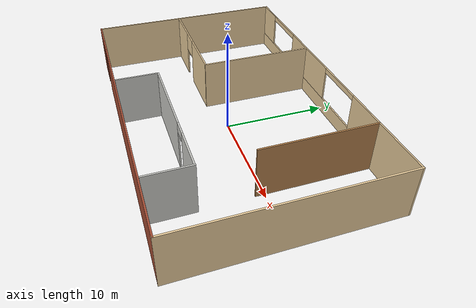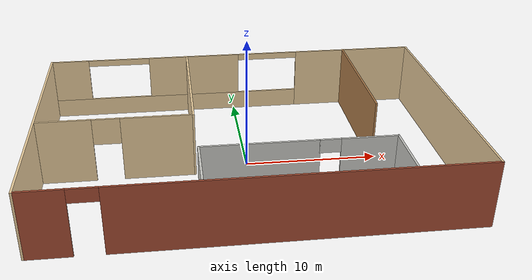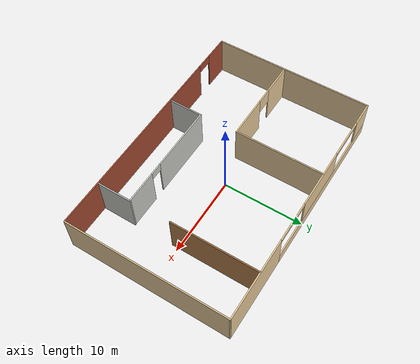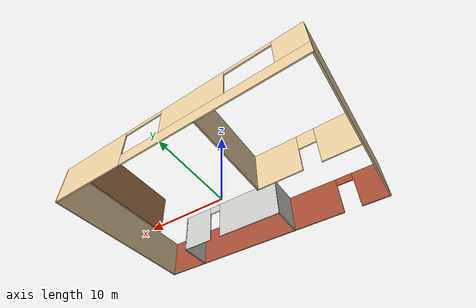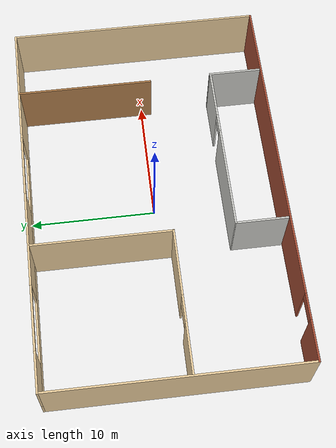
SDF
<?xml version='1.0'?>
<sdf version='1.6'>
  <model name='house_robot'>
    <link name='Wall_103'>
      <pose frame=''>-3.96202 4.4525 0 0 -0 1.5708</pose>
      <self_collide>0</self_collide>
      <kinematic>0</kinematic>
      <visual name='Wall_103_Visual'>
        <pose frame=''>0 0 2.5 0 -0 0</pose>
        <geometry>
          <box>
            <size>11 0.15 5</size>
          </box>
        </geometry>
        <material>
          <script>
            <uri>file://media/materials/scripts/gazebo.material</uri>
            <name>Gazebo/Grey</name>
          </script>
          <ambient>0.921569 0.807843 0.615686 1</ambient>
          <diffuse>0.7 0.7 0.7 1</diffuse>
          <specular>0.01 0.01 0.01 1</specular>
          <emissive>0 0 0 1</emissive>
        </material>
        <cast_shadows>1</cast_shadows>
        <transparency>0</transparency>
      </visual>
      <collision name='Wall_103_Collision'>
        <laser_retro>0</laser_retro>
        <max_contacts>10</max_contacts>
        <pose frame=''>0 0 2.5 0 -0 0</pose>
        <geometry>
          <box>
            <size>11 0.15 5</size>
          </box>
        </geometry>
        <surface>
          <friction>
            <ode>
              <mu>1</mu>
              <mu2>1</mu2>
              <fdir1>0 0 0</fdir1>
              <slip1>0</slip1>
              <slip2>0</slip2>
            </ode>
            <torsional>
              <coefficient>1</coefficient>
              <patch_radius>0</patch_radius>
              <surface_radius>0</surface_radius>
              <use_patch_radius>1</use_patch_radius>
              <ode>
                <slip>0</slip>
              </ode>
            </torsional>
          </friction>
          <bounce>
            <restitution_coefficient>0</restitution_coefficient>
            <threshold>1e+06</threshold>
          </bounce>
          <contact>
            <collide_without_contact>0</collide_without_contact>
            <collide_without_contact_bitmask>1</collide_without_contact_bitmask>
            <collide_bitmask>1</collide_bitmask>
            <ode>
              <soft_cfm>0</soft_cfm>
              <soft_erp>0.2</soft_erp>
              <kp>1e+13</kp>
              <kd>1</kd>
              <max_vel>0.01</max_vel>
              <min_depth>0</min_depth>
            </ode>
            <bullet>
              <split_impulse>1</split_impulse>
              <split_impulse_penetration_threshold>-0.01</split_impulse_penetration_threshold>
              <soft_cfm>0</soft_cfm>
              <soft_erp>0.2</soft_erp>
              <kp>1e+13</kp>
              <kd>1</kd>
            </bullet>
          </contact>
        </surface>
      </collision>
    </link>
    <link name='Wall_105'>
      <pose frame=''>9.54899 4.5795 0 0 0 -1.5708</pose>
      <self_collide>0</self_collide>
      <kinematic>0</kinematic>
      <visual name='Wall_105_Visual'>
        <pose frame=''>0 0 2.5 0 -0 0</pose>
        <geometry>
          <box>
            <size>10.75 0.15 5</size>
          </box>
        </geometry>
        <material>
          <script>
            <uri>file://media/materials/scripts/gazebo.material</uri>
            <name>Gazebo/Wood</name>
          </script>
          <ambient>0.921569 0.807843 0.615686 1</ambient>
          <diffuse>1 1 1 1</diffuse>
          <specular>0.2 0.2 0.2 1</specular>
          <emissive>0 0 0 1</emissive>
        </material>
        <cast_shadows>1</cast_shadows>
        <transparency>0</transparency>
      </visual>
      <collision name='Wall_105_Collision'>
        <laser_retro>0</laser_retro>
        <max_contacts>10</max_contacts>
        <pose frame=''>0 0 2.5 0 -0 0</pose>
        <geometry>
          <box>
            <size>10.75 0.15 5</size>
          </box>
        </geometry>
        <surface>
          <friction>
            <ode>
              <mu>1</mu>
              <mu2>1</mu2>
              <fdir1>0 0 0</fdir1>
              <slip1>0</slip1>
              <slip2>0</slip2>
            </ode>
            <torsional>
              <coefficient>1</coefficient>
              <patch_radius>0</patch_radius>
              <surface_radius>0</surface_radius>
              <use_patch_radius>1</use_patch_radius>
              <ode>
                <slip>0</slip>
              </ode>
            </torsional>
          </friction>
          <bounce>
            <restitution_coefficient>0</restitution_coefficient>
            <threshold>1e+06</threshold>
          </bounce>
          <contact>
            <collide_without_contact>0</collide_without_contact>
            <collide_without_contact_bitmask>1</collide_without_contact_bitmask>
            <collide_bitmask>1</collide_bitmask>
            <ode>
              <soft_cfm>0</soft_cfm>
              <soft_erp>0.2</soft_erp>
              <kp>1e+13</kp>
              <kd>1</kd>
              <max_vel>0.01</max_vel>
              <min_depth>0</min_depth>
            </ode>
            <bullet>
              <split_impulse>1</split_impulse>
              <split_impulse_penetration_threshold>-0.01</split_impulse_penetration_threshold>
              <soft_cfm>0</soft_cfm>
              <soft_erp>0.2</soft_erp>
              <kp>1e+13</kp>
              <kd>1</kd>
            </bullet>
          </contact>
        </surface>
      </collision>
    </link>
    <link name='Wall_107'>
      <pose frame=''>15.175 0.0265 0 0 -0 1.5708</pose>
      <self_collide>0</self_collide>
      <kinematic>0</kinematic>
      <visual name='Wall_107_Visual'>
        <pose frame=''>0 0 2.5 0 -0 0</pose>
        <geometry>
          <box>
            <size>20 0.15 5</size>
          </box>
        </geometry>
        <material>
          <script>
            <uri>file://media/materials/scripts/gazebo.material</uri>
            <name>Gazebo/Grey</name>
          </script>
          <ambient>0.921569 0.807843 0.615686 1</ambient>
          <diffuse>0.7 0.7 0.7 1</diffuse>
          <specular>0.01 0.01 0.01 1</specular>
          <emissive>0 0 0 1</emissive>
        </material>
        <cast_shadows>1</cast_shadows>
        <transparency>0</transparency>
      </visual>
      <collision name='Wall_107_Collision'>
        <laser_retro>0</laser_retro>
        <max_contacts>10</max_contacts>
        <pose frame=''>0 0 2.5 0 -0 0</pose>
        <geometry>
          <box>
            <size>20 0.15 5</size>
          </box>
        </geometry>
        <surface>
          <friction>
            <ode>
              <mu>1</mu>
              <mu2>1</mu2>
              <fdir1>0 0 0</fdir1>
              <slip1>0</slip1>
              <slip2>0</slip2>
            </ode>
            <torsional>
              <coefficient>1</coefficient>
              <patch_radius>0</patch_radius>
              <surface_radius>0</surface_radius>
              <use_patch_radius>1</use_patch_radius>
              <ode>
                <slip>0</slip>
              </ode>
            </torsional>
          </friction>
          <bounce>
            <restitution_coefficient>0</restitution_coefficient>
            <threshold>1e+06</threshold>
          </bounce>
          <contact>
            <collide_without_contact>0</collide_without_contact>
            <collide_without_contact_bitmask>1</collide_without_contact_bitmask>
            <collide_bitmask>1</collide_bitmask>
            <ode>
              <soft_cfm>0</soft_cfm>
              <soft_erp>0.2</soft_erp>
              <kp>1e+13</kp>
              <kd>1</kd>
              <max_vel>0.01</max_vel>
              <min_depth>0</min_depth>
            </ode>
            <bullet>
              <split_impulse>1</split_impulse>
              <split_impulse_penetration_threshold>-0.01</split_impulse_penetration_threshold>
              <soft_cfm>0</soft_cfm>
              <soft_erp>0.2</soft_erp>
              <kp>1e+13</kp>
              <kd>1</kd>
            </bullet>
          </contact>
        </surface>
      </collision>
    </link>
    <link name='Wall_108'>
      <pose frame=''>-1.5e-05 9.9515 0 0 -0 3.14159</pose>
      <self_collide>0</self_collide>
      <kinematic>0</kinematic>
      <visual name='Wall_108_Visual_1'>
        <pose frame=''>4.92284 0 0.75 0 -0 0</pose>
        <geometry>
          <box>
            <size>20.6543 0.15 1.5</size>
          </box>
        </geometry>
        <material>
          <script>
            <uri>file://media/materials/scripts/gazebo.material</uri>
            <name>Gazebo/Grey</name>
          </script>
          <ambient>0.921569 0.807843 0.615686 1</ambient>
          <diffuse>0.7 0.7 0.7 1</diffuse>
          <specular>0.01 0.01 0.01 1</specular>
          <emissive>0 0 0 1</emissive>
        </material>
        <cast_shadows>1</cast_shadows>
        <transparency>0</transparency>
      </visual>
      <visual name='Wall_108_Visual_4'>
        <pose frame=''>-2.90432 0 4.75 0 -0 0</pose>
        <geometry>
          <box>
            <size>5 0.15 0.5</size>
          </box>
        </geometry>
        <material>
          <script>
            <uri>file://media/materials/scripts/gazebo.material</uri>
            <name>Gazebo/Grey</name>
          </script>
          <ambient>0.921569 0.807843 0.615686 1</ambient>
          <diffuse>0.7 0.7 0.7 1</diffuse>
          <specular>0.01 0.01 0.01 1</specular>
          <emissive>0 0 0 1</emissive>
        </material>
        <cast_shadows>1</cast_shadows>
        <transparency>0</transparency>
      </visual>
      <visual name='Wall_108_Visual_5'>
        <pose frame=''>9.64746 0 4.75 0 -0 0</pose>
        <geometry>
          <box>
            <size>5 0.15 0.5</size>
          </box>
        </geometry>
        <material>
          <script>
            <uri>file://media/materials/scripts/gazebo.material</uri>
            <name>Gazebo/Grey</name>
          </script>
          <ambient>0.921569 0.807843 0.615686 1</ambient>
          <diffuse>0.7 0.7 0.7 1</diffuse>
          <specular>0.01 0.01 0.01 1</specular>
          <emissive>0 0 0 1</emissive>
        </material>
        <cast_shadows>1</cast_shadows>
        <transparency>0</transparency>
      </visual>
      <visual name='Wall_108_Visual_2'>
        <pose frame=''>3.37157 0 3.25 0 -0 0</pose>
        <geometry>
          <box>
            <size>7.55178 0.15 3.5</size>
          </box>
        </geometry>
        <material>
          <script>
            <uri>file://media/materials/scripts/gazebo.material</uri>
            <name>Gazebo/Grey</name>
          </script>
          <ambient>0.921569 0.807843 0.615686 1</ambient>
          <diffuse>0.7 0.7 0.7 1</diffuse>
          <specular>0.01 0.01 0.01 1</specular>
          <emissive>0 0 0 1</emissive>
        </material>
        <cast_shadows>1</cast_shadows>
        <transparency>0</transparency>
      </visual>
      <visual name='Wall_108_Visual_0'>
        <pose frame=''>-10.3272 0 2.5 0 -0 0</pose>
        <geometry>
          <box>
            <size>9.84568 0.15 5</size>
          </box>
        </geometry>
        <material>
          <script>
            <uri>file://media/materials/scripts/gazebo.material</uri>
            <name>Gazebo/Grey</name>
          </script>
          <ambient>0.921569 0.807843 0.615686 1</ambient>
          <diffuse>0.7 0.7 0.7 1</diffuse>
          <specular>0.01 0.01 0.01 1</specular>
          <emissive>0 0 0 1</emissive>
        </material>
        <cast_shadows>1</cast_shadows>
        <transparency>0</transparency>
      </visual>
      <visual name='Wall_108_Visual_3'>
        <pose frame=''>13.6987 0 3.25 0 -0 0</pose>
        <geometry>
          <box>
            <size>3.10254 0.15 3.5</size>
          </box>
        </geometry>
        <material>
          <script>
            <uri>file://media/materials/scripts/gazebo.material</uri>
            <name>Gazebo/Grey</name>
          </script>
          <ambient>0.921569 0.807843 0.615686 1</ambient>
          <diffuse>0.7 0.7 0.7 1</diffuse>
          <specular>0.01 0.01 0.01 1</specular>
          <emissive>0 0 0 1</emissive>
        </material>
        <cast_shadows>1</cast_shadows>
        <transparency>0</transparency>
      </visual>
      <collision name='Wall_108_Collision_0'>
        <laser_retro>0</laser_retro>
        <max_contacts>10</max_contacts>
        <pose frame=''>-10.3272 0 2.5 0 -0 0</pose>
        <geometry>
          <box>
            <size>9.84568 0.15 5</size>
          </box>
        </geometry>
        <surface>
          <friction>
            <ode>
              <mu>1</mu>
              <mu2>1</mu2>
              <fdir1>0 0 0</fdir1>
              <slip1>0</slip1>
              <slip2>0</slip2>
            </ode>
            <torsional>
              <coefficient>1</coefficient>
              <patch_radius>0</patch_radius>
              <surface_radius>0</surface_radius>
              <use_patch_radius>1</use_patch_radius>
              <ode>
                <slip>0</slip>
              </ode>
            </torsional>
          </friction>
          <bounce>
            <restitution_coefficient>0</restitution_coefficient>
            <threshold>1e+06</threshold>
          </bounce>
          <contact>
            <collide_without_contact>0</collide_without_contact>
            <collide_without_contact_bitmask>1</collide_without_contact_bitmask>
            <collide_bitmask>1</collide_bitmask>
            <ode>
              <soft_cfm>0</soft_cfm>
              <soft_erp>0.2</soft_erp>
              <kp>1e+13</kp>
              <kd>1</kd>
              <max_vel>0.01</max_vel>
              <min_depth>0</min_depth>
            </ode>
            <bullet>
              <split_impulse>1</split_impulse>
              <split_impulse_penetration_threshold>-0.01</split_impulse_penetration_threshold>
              <soft_cfm>0</soft_cfm>
              <soft_erp>0.2</soft_erp>
              <kp>1e+13</kp>
              <kd>1</kd>
            </bullet>
          </contact>
        </surface>
      </collision>
      <collision name='Wall_108_Collision_1'>
        <laser_retro>0</laser_retro>
        <max_contacts>10</max_contacts>
        <pose frame=''>4.92284 0 0.75 0 -0 0</pose>
        <geometry>
          <box>
            <size>20.6543 0.15 1.5</size>
          </box>
        </geometry>
        <surface>
          <friction>
            <ode>
              <mu>1</mu>
              <mu2>1</mu2>
              <fdir1>0 0 0</fdir1>
              <slip1>0</slip1>
              <slip2>0</slip2>
            </ode>
            <torsional>
              <coefficient>1</coefficient>
              <patch_radius>0</patch_radius>
              <surface_radius>0</surface_radius>
              <use_patch_radius>1</use_patch_radius>
              <ode>
                <slip>0</slip>
              </ode>
            </torsional>
          </friction>
          <bounce>
            <restitution_coefficient>0</restitution_coefficient>
            <threshold>1e+06</threshold>
          </bounce>
          <contact>
            <collide_without_contact>0</collide_without_contact>
            <collide_without_contact_bitmask>1</collide_without_contact_bitmask>
            <collide_bitmask>1</collide_bitmask>
            <ode>
              <soft_cfm>0</soft_cfm>
              <soft_erp>0.2</soft_erp>
              <kp>1e+13</kp>
              <kd>1</kd>
              <max_vel>0.01</max_vel>
              <min_depth>0</min_depth>
            </ode>
            <bullet>
              <split_impulse>1</split_impulse>
              <split_impulse_penetration_threshold>-0.01</split_impulse_penetration_threshold>
              <soft_cfm>0</soft_cfm>
              <soft_erp>0.2</soft_erp>
              <kp>1e+13</kp>
              <kd>1</kd>
            </bullet>
          </contact>
        </surface>
      </collision>
      <collision name='Wall_108_Collision_4'>
        <laser_retro>0</laser_retro>
        <max_contacts>10</max_contacts>
        <pose frame=''>-2.90432 0 4.75 0 -0 0</pose>
        <geometry>
          <box>
            <size>5 0.15 0.5</size>
          </box>
        </geometry>
        <surface>
          <friction>
            <ode>
              <mu>1</mu>
              <mu2>1</mu2>
              <fdir1>0 0 0</fdir1>
              <slip1>0</slip1>
              <slip2>0</slip2>
            </ode>
            <torsional>
              <coefficient>1</coefficient>
              <patch_radius>0</patch_radius>
              <surface_radius>0</surface_radius>
              <use_patch_radius>1</use_patch_radius>
              <ode>
                <slip>0</slip>
              </ode>
            </torsional>
          </friction>
          <bounce>
            <restitution_coefficient>0</restitution_coefficient>
            <threshold>1e+06</threshold>
          </bounce>
          <contact>
            <collide_without_contact>0</collide_without_contact>
            <collide_without_contact_bitmask>1</collide_without_contact_bitmask>
            <collide_bitmask>1</collide_bitmask>
            <ode>
              <soft_cfm>0</soft_cfm>
              <soft_erp>0.2</soft_erp>
              <kp>1e+13</kp>
              <kd>1</kd>
              <max_vel>0.01</max_vel>
              <min_depth>0</min_depth>
            </ode>
            <bullet>
              <split_impulse>1</split_impulse>
              <split_impulse_penetration_threshold>-0.01</split_impulse_penetration_threshold>
              <soft_cfm>0</soft_cfm>
              <soft_erp>0.2</soft_erp>
              <kp>1e+13</kp>
              <kd>1</kd>
            </bullet>
          </contact>
        </surface>
      </collision>
      <collision name='Wall_108_Collision_2'>
        <laser_retro>0</laser_retro>
        <max_contacts>10</max_contacts>
        <pose frame=''>3.37157 0 3.25 0 -0 0</pose>
        <geometry>
          <box>
            <size>7.55178 0.15 3.5</size>
          </box>
        </geometry>
        <surface>
          <friction>
            <ode>
              <mu>1</mu>
              <mu2>1</mu2>
              <fdir1>0 0 0</fdir1>
              <slip1>0</slip1>
              <slip2>0</slip2>
            </ode>
            <torsional>
              <coefficient>1</coefficient>
              <patch_radius>0</patch_radius>
              <surface_radius>0</surface_radius>
              <use_patch_radius>1</use_patch_radius>
              <ode>
                <slip>0</slip>
              </ode>
            </torsional>
          </friction>
          <bounce>
            <restitution_coefficient>0</restitution_coefficient>
            <threshold>1e+06</threshold>
          </bounce>
          <contact>
            <collide_without_contact>0</collide_without_contact>
            <collide_without_contact_bitmask>1</collide_without_contact_bitmask>
            <collide_bitmask>1</collide_bitmask>
            <ode>
              <soft_cfm>0</soft_cfm>
              <soft_erp>0.2</soft_erp>
              <kp>1e+13</kp>
              <kd>1</kd>
              <max_vel>0.01</max_vel>
              <min_depth>0</min_depth>
            </ode>
            <bullet>
              <split_impulse>1</split_impulse>
              <split_impulse_penetration_threshold>-0.01</split_impulse_penetration_threshold>
              <soft_cfm>0</soft_cfm>
              <soft_erp>0.2</soft_erp>
              <kp>1e+13</kp>
              <kd>1</kd>
            </bullet>
          </contact>
        </surface>
      </collision>
      <collision name='Wall_108_Collision_3'>
        <laser_retro>0</laser_retro>
        <max_contacts>10</max_contacts>
        <pose frame=''>13.6987 0 3.25 0 -0 0</pose>
        <geometry>
          <box>
            <size>3.10254 0.15 3.5</size>
          </box>
        </geometry>
        <surface>
          <friction>
            <ode>
              <mu>1</mu>
              <mu2>1</mu2>
              <fdir1>0 0 0</fdir1>
              <slip1>0</slip1>
              <slip2>0</slip2>
            </ode>
            <torsional>
              <coefficient>1</coefficient>
              <patch_radius>0</patch_radius>
              <surface_radius>0</surface_radius>
              <use_patch_radius>1</use_patch_radius>
              <ode>
                <slip>0</slip>
              </ode>
            </torsional>
          </friction>
          <bounce>
            <restitution_coefficient>0</restitution_coefficient>
            <threshold>1e+06</threshold>
          </bounce>
          <contact>
            <collide_without_contact>0</collide_without_contact>
            <collide_without_contact_bitmask>1</collide_without_contact_bitmask>
            <collide_bitmask>1</collide_bitmask>
            <ode>
              <soft_cfm>0</soft_cfm>
              <soft_erp>0.2</soft_erp>
              <kp>1e+13</kp>
              <kd>1</kd>
              <max_vel>0.01</max_vel>
              <min_depth>0</min_depth>
            </ode>
            <bullet>
              <split_impulse>1</split_impulse>
              <split_impulse_penetration_threshold>-0.01</split_impulse_penetration_threshold>
              <soft_cfm>0</soft_cfm>
              <soft_erp>0.2</soft_erp>
              <kp>1e+13</kp>
              <kd>1</kd>
            </bullet>
          </contact>
        </surface>
      </collision>
      <collision name='Wall_108_Collision_5'>
        <laser_retro>0</laser_retro>
        <max_contacts>10</max_contacts>
        <pose frame=''>9.64746 0 4.75 0 -0 0</pose>
        <geometry>
          <box>
            <size>5 0.15 0.5</size>
          </box>
        </geometry>
        <surface>
          <friction>
            <ode>
              <mu>1</mu>
              <mu2>1</mu2>
              <fdir1>0 0 0</fdir1>
              <slip1>0</slip1>
              <slip2>0</slip2>
            </ode>
            <torsional>
              <coefficient>1</coefficient>
              <patch_radius>0</patch_radius>
              <surface_radius>0</surface_radius>
              <use_patch_radius>1</use_patch_radius>
              <ode>
                <slip>0</slip>
              </ode>
            </torsional>
          </friction>
          <bounce>
            <restitution_coefficient>0</restitution_coefficient>
            <threshold>1e+06</threshold>
          </bounce>
          <contact>
            <collide_without_contact>0</collide_without_contact>
            <collide_without_contact_bitmask>1</collide_without_contact_bitmask>
            <collide_bitmask>1</collide_bitmask>
            <ode>
              <soft_cfm>0</soft_cfm>
              <soft_erp>0.2</soft_erp>
              <kp>1e+13</kp>
              <kd>1</kd>
              <max_vel>0.01</max_vel>
              <min_depth>0</min_depth>
            </ode>
            <bullet>
              <split_impulse>1</split_impulse>
              <split_impulse_penetration_threshold>-0.01</split_impulse_penetration_threshold>
              <soft_cfm>0</soft_cfm>
              <soft_erp>0.2</soft_erp>
              <kp>1e+13</kp>
              <kd>1</kd>
            </bullet>
          </contact>
        </surface>
      </collision>
    </link>
    <link name='Wall_109'>
      <pose frame=''>-15.175 0.0265 0 0 0 -1.5708</pose>
      <self_collide>0</self_collide>
      <kinematic>0</kinematic>
      <visual name='Wall_109_Visual'>
        <pose frame=''>0 0 2.5 0 -0 0</pose>
        <geometry>
          <box>
            <size>20 0.15 5</size>
          </box>
        </geometry>
        <material>
          <script>
            <uri>file://media/materials/scripts/gazebo.material</uri>
            <name>Gazebo/Grey</name>
          </script>
          <ambient>0.921569 0.807843 0.615686 1</ambient>
          <diffuse>0.7 0.7 0.7 1</diffuse>
          <specular>0.01 0.01 0.01 1</specular>
          <emissive>0 0 0 1</emissive>
        </material>
        <cast_shadows>1</cast_shadows>
        <transparency>0</transparency>
      </visual>
      <collision name='Wall_109_Collision'>
        <laser_retro>0</laser_retro>
        <max_contacts>10</max_contacts>
        <pose frame=''>0 0 2.5 0 -0 0</pose>
        <geometry>
          <box>
            <size>20 0.15 5</size>
          </box>
        </geometry>
        <surface>
          <friction>
            <ode>
              <mu>1</mu>
              <mu2>1</mu2>
              <fdir1>0 0 0</fdir1>
              <slip1>0</slip1>
              <slip2>0</slip2>
            </ode>
            <torsional>
              <coefficient>1</coefficient>
              <patch_radius>0</patch_radius>
              <surface_radius>0</surface_radius>
              <use_patch_radius>1</use_patch_radius>
              <ode>
                <slip>0</slip>
              </ode>
            </torsional>
          </friction>
          <bounce>
            <restitution_coefficient>0</restitution_coefficient>
            <threshold>1e+06</threshold>
          </bounce>
          <contact>
            <collide_without_contact>0</collide_without_contact>
            <collide_without_contact_bitmask>1</collide_without_contact_bitmask>
            <collide_bitmask>1</collide_bitmask>
            <ode>
              <soft_cfm>0</soft_cfm>
              <soft_erp>0.2</soft_erp>
              <kp>1e+13</kp>
              <kd>1</kd>
              <max_vel>0.01</max_vel>
              <min_depth>0</min_depth>
            </ode>
            <bullet>
              <split_impulse>1</split_impulse>
              <split_impulse_penetration_threshold>-0.01</split_impulse_penetration_threshold>
              <soft_cfm>0</soft_cfm>
              <soft_erp>0.2</soft_erp>
              <kp>1e+13</kp>
              <kd>1</kd>
            </bullet>
          </contact>
        </surface>
      </collision>
    </link>
    <link name='Wall_119'>
      <pose frame=''>9.67953 -7.71239 0 0 -0 1.5708</pose>
      <inertial>
        <inertia>
          <ixx>nan</ixx>
          <ixy>0</ixy>
          <ixz>0</ixz>
          <iyy>nan</iyy>
          <iyz>0</iyz>
          <izz>nan</izz>
        </inertia>
        <mass>0</mass>
        <pose frame=''>0 0 0 0 -0 0</pose>
      </inertial>
      <self_collide>0</self_collide>
      <kinematic>0</kinematic>
      <visual name='Wall_119_Visual'>
        <pose frame=''>0 0 2.5 0 -0 0</pose>
        <geometry>
          <box>
            <size>4.17951 0.15 5</size>
          </box>
        </geometry>
        <material>
          <script>
            <uri>file://media/materials/scripts/gazebo.material</uri>
            <name>Gazebo/CeilingTiled</name>
          </script>
          <ambient>0.921569 0.807843 0.615686 1</ambient>
          <diffuse>1 1 1 1</diffuse>
          <specular>0 0 0 1</specular>
          <emissive>0 0 0 1</emissive>
        </material>
        <cast_shadows>1</cast_shadows>
        <transparency>0</transparency>
      </visual>
      <collision name='Wall_119_Collision'>
        <laser_retro>0</laser_retro>
        <max_contacts>10</max_contacts>
        <pose frame=''>0 0 2.5 0 -0 0</pose>
        <geometry>
          <box>
            <size>4.17951 0.15 5</size>
          </box>
        </geometry>
        <surface>
          <friction>
            <ode>
              <mu>1</mu>
              <mu2>1</mu2>
              <fdir1>0 0 0</fdir1>
              <slip1>0</slip1>
              <slip2>0</slip2>
            </ode>
            <torsional>
              <coefficient>1</coefficient>
              <patch_radius>0</patch_radius>
              <surface_radius>0</surface_radius>
              <use_patch_radius>1</use_patch_radius>
              <ode>
                <slip>0</slip>
              </ode>
            </torsional>
          </friction>
          <bounce>
            <restitution_coefficient>0</restitution_coefficient>
            <threshold>1e+06</threshold>
          </bounce>
          <contact>
            <collide_without_contact>0</collide_without_contact>
            <collide_without_contact_bitmask>1</collide_without_contact_bitmask>
            <collide_bitmask>1</collide_bitmask>
            <ode>
              <soft_cfm>0</soft_cfm>
              <soft_erp>0.2</soft_erp>
              <kp>1e+13</kp>
              <kd>1</kd>
              <max_vel>0.01</max_vel>
              <min_depth>0</min_depth>
            </ode>
            <bullet>
              <split_impulse>1</split_impulse>
              <split_impulse_penetration_threshold>-0.01</split_impulse_penetration_threshold>
              <soft_cfm>0</soft_cfm>
              <soft_erp>0.2</soft_erp>
              <kp>1e+13</kp>
              <kd>1</kd>
            </bullet>
          </contact>
        </surface>
      </collision>
    </link>
    <link name='Wall_120'>
      <pose frame=''>2.89875 -5.72264 0 0 -0 3.14159</pose>
      <self_collide>0</self_collide>
      <kinematic>0</kinematic>
      <inertial>
        <inertia>
          <ixx>nan</ixx>
          <ixy>0</ixy>
          <ixz>0</ixz>
          <iyy>nan</iyy>
          <iyz>0</iyz>
          <izz>nan</izz>
        </inertia>
        <mass>0</mass>
        <pose frame=''>0 0 0 0 -0 0</pose>
      </inertial>
      <visual name='Wall_120_Visual_0'>
        <pose frame=''>-4.81655 0 2.5 0 -0 0</pose>
        <geometry>
          <box>
            <size>3.97669 0.15 5</size>
          </box>
        </geometry>
        <material>
          <script>
            <uri>file://media/materials/scripts/gazebo.material</uri>
            <name>Gazebo/CeilingTiled</name>
          </script>
          <ambient>0.921569 0.807843 0.615686 1</ambient>
          <diffuse>1 1 1 1</diffuse>
          <specular>0 0 0 1</specular>
          <emissive>0 0 0 1</emissive>
        </material>
        <cast_shadows>1</cast_shadows>
        <transparency>0</transparency>
      </visual>
      <visual name='Wall_120_Visual_1'>
        <pose frame=''>2.71536 0 2.5 0 -0 0</pose>
        <geometry>
          <box>
            <size>8.22824 0.15 5</size>
          </box>
        </geometry>
        <material>
          <script>
            <uri>file://media/materials/scripts/gazebo.material</uri>
            <name>Gazebo/CeilingTiled</name>
          </script>
          <ambient>0.921569 0.807843 0.615686 1</ambient>
          <diffuse>1 1 1 1</diffuse>
          <specular>0 0 0 1</specular>
          <emissive>0 0 0 1</emissive>
        </material>
        <cast_shadows>1</cast_shadows>
        <transparency>0</transparency>
      </visual>
      <visual name='Wall_120_Visual_2'>
        <pose frame=''>-2.10119 0 4.5 0 -0 0</pose>
        <geometry>
          <box>
            <size>1.51755 0.15 1</size>
          </box>
        </geometry>
        <material>
          <script>
            <uri>file://media/materials/scripts/gazebo.material</uri>
            <name>Gazebo/CeilingTiled</name>
          </script>
          <ambient>0.921569 0.807843 0.615686 1</ambient>
          <diffuse>1 1 1 1</diffuse>
          <specular>0 0 0 1</specular>
          <emissive>0 0 0 1</emissive>
        </material>
        <cast_shadows>1</cast_shadows>
        <transparency>0</transparency>
      </visual>
      <collision name='Wall_120_Collision_2'>
        <laser_retro>0</laser_retro>
        <max_contacts>10</max_contacts>
        <pose frame=''>-2.10119 0 4.5 0 -0 0</pose>
        <geometry>
          <box>
            <size>1.51755 0.15 1</size>
          </box>
        </geometry>
        <surface>
          <friction>
            <ode>
              <mu>1</mu>
              <mu2>1</mu2>
              <fdir1>0 0 0</fdir1>
              <slip1>0</slip1>
              <slip2>0</slip2>
            </ode>
            <torsional>
              <coefficient>1</coefficient>
              <patch_radius>0</patch_radius>
              <surface_radius>0</surface_radius>
              <use_patch_radius>1</use_patch_radius>
              <ode>
                <slip>0</slip>
              </ode>
            </torsional>
          </friction>
          <bounce>
            <restitution_coefficient>0</restitution_coefficient>
            <threshold>1e+06</threshold>
          </bounce>
          <contact>
            <collide_without_contact>0</collide_without_contact>
            <collide_without_contact_bitmask>1</collide_without_contact_bitmask>
            <collide_bitmask>1</collide_bitmask>
            <ode>
              <soft_cfm>0</soft_cfm>
              <soft_erp>0.2</soft_erp>
              <kp>1e+13</kp>
              <kd>1</kd>
              <max_vel>0.01</max_vel>
              <min_depth>0</min_depth>
            </ode>
            <bullet>
              <split_impulse>1</split_impulse>
              <split_impulse_penetration_threshold>-0.01</split_impulse_penetration_threshold>
              <soft_cfm>0</soft_cfm>
              <soft_erp>0.2</soft_erp>
              <kp>1e+13</kp>
              <kd>1</kd>
            </bullet>
          </contact>
        </surface>
      </collision>
      <collision name='Wall_120_Collision_0'>
        <laser_retro>0</laser_retro>
        <max_contacts>10</max_contacts>
        <pose frame=''>-4.81655 0 2.5 0 -0 0</pose>
        <geometry>
          <box>
            <size>3.97669 0.15 5</size>
          </box>
        </geometry>
        <surface>
          <friction>
            <ode>
              <mu>1</mu>
              <mu2>1</mu2>
              <fdir1>0 0 0</fdir1>
              <slip1>0</slip1>
              <slip2>0</slip2>
            </ode>
            <torsional>
              <coefficient>1</coefficient>
              <patch_radius>0</patch_radius>
              <surface_radius>0</surface_radius>
              <use_patch_radius>1</use_patch_radius>
              <ode>
                <slip>0</slip>
              </ode>
            </torsional>
          </friction>
          <bounce>
            <restitution_coefficient>0</restitution_coefficient>
            <threshold>1e+06</threshold>
          </bounce>
          <contact>
            <collide_without_contact>0</collide_without_contact>
            <collide_without_contact_bitmask>1</collide_without_contact_bitmask>
            <collide_bitmask>1</collide_bitmask>
            <ode>
              <soft_cfm>0</soft_cfm>
              <soft_erp>0.2</soft_erp>
              <kp>1e+13</kp>
              <kd>1</kd>
              <max_vel>0.01</max_vel>
              <min_depth>0</min_depth>
            </ode>
            <bullet>
              <split_impulse>1</split_impulse>
              <split_impulse_penetration_threshold>-0.01</split_impulse_penetration_threshold>
              <soft_cfm>0</soft_cfm>
              <soft_erp>0.2</soft_erp>
              <kp>1e+13</kp>
              <kd>1</kd>
            </bullet>
          </contact>
        </surface>
      </collision>
      <collision name='Wall_120_Collision_1'>
        <laser_retro>0</laser_retro>
        <max_contacts>10</max_contacts>
        <pose frame=''>2.71536 0 2.5 0 -0 0</pose>
        <geometry>
          <box>
            <size>8.22824 0.15 5</size>
          </box>
        </geometry>
        <surface>
          <friction>
            <ode>
              <mu>1</mu>
              <mu2>1</mu2>
              <fdir1>0 0 0</fdir1>
              <slip1>0</slip1>
              <slip2>0</slip2>
            </ode>
            <torsional>
              <coefficient>1</coefficient>
              <patch_radius>0</patch_radius>
              <surface_radius>0</surface_radius>
              <use_patch_radius>1</use_patch_radius>
              <ode>
                <slip>0</slip>
              </ode>
            </torsional>
          </friction>
          <bounce>
            <restitution_coefficient>0</restitution_coefficient>
            <threshold>1e+06</threshold>
          </bounce>
          <contact>
            <collide_without_contact>0</collide_without_contact>
            <collide_without_contact_bitmask>1</collide_without_contact_bitmask>
            <collide_bitmask>1</collide_bitmask>
            <ode>
              <soft_cfm>0</soft_cfm>
              <soft_erp>0.2</soft_erp>
              <kp>1e+13</kp>
              <kd>1</kd>
              <max_vel>0.01</max_vel>
              <min_depth>0</min_depth>
            </ode>
            <bullet>
              <split_impulse>1</split_impulse>
              <split_impulse_penetration_threshold>-0.01</split_impulse_penetration_threshold>
              <soft_cfm>0</soft_cfm>
              <soft_erp>0.2</soft_erp>
              <kp>1e+13</kp>
              <kd>1</kd>
            </bullet>
          </contact>
        </surface>
      </collision>
    </link>
    <link name='Wall_121'>
      <pose frame=''>-3.87202 -7.75642 0 0 0 -1.5708</pose>
      <inertial>
        <inertia>
          <ixx>nan</ixx>
          <ixy>0</ixy>
          <ixz>0</ixz>
          <iyy>nan</iyy>
          <iyz>0</iyz>
          <izz>nan</izz>
        </inertia>
        <mass>0</mass>
        <pose frame=''>0 0 0 0 -0 0</pose>
      </inertial>
      <self_collide>0</self_collide>
      <kinematic>0</kinematic>
      <visual name='Wall_121_Visual'>
        <pose frame=''>0 0 2.5 0 -0 0</pose>
        <geometry>
          <box>
            <size>4.07058 0.15 5</size>
          </box>
        </geometry>
        <material>
          <script>
            <uri>file://media/materials/scripts/gazebo.material</uri>
            <name>Gazebo/CeilingTiled</name>
          </script>
          <ambient>0.921569 0.807843 0.615686 1</ambient>
          <diffuse>1 1 1 1</diffuse>
          <specular>0 0 0 1</specular>
          <emissive>0 0 0 1</emissive>
        </material>
        <cast_shadows>1</cast_shadows>
        <transparency>0</transparency>
      </visual>
      <collision name='Wall_121_Collision'>
        <laser_retro>0</laser_retro>
        <max_contacts>10</max_contacts>
        <pose frame=''>0 0 2.5 0 -0 0</pose>
        <geometry>
          <box>
            <size>4.07058 0.15 5</size>
          </box>
        </geometry>
        <surface>
          <friction>
            <ode>
              <mu>1</mu>
              <mu2>1</mu2>
              <fdir1>0 0 0</fdir1>
              <slip1>0</slip1>
              <slip2>0</slip2>
            </ode>
            <torsional>
              <coefficient>1</coefficient>
              <patch_radius>0</patch_radius>
              <surface_radius>0</surface_radius>
              <use_patch_radius>1</use_patch_radius>
              <ode>
                <slip>0</slip>
              </ode>
            </torsional>
          </friction>
          <bounce>
            <restitution_coefficient>0</restitution_coefficient>
            <threshold>1e+06</threshold>
          </bounce>
          <contact>
            <collide_without_contact>0</collide_without_contact>
            <collide_without_contact_bitmask>1</collide_without_contact_bitmask>
            <collide_bitmask>1</collide_bitmask>
            <ode>
              <soft_cfm>0</soft_cfm>
              <soft_erp>0.2</soft_erp>
              <kp>1e+13</kp>
              <kd>1</kd>
              <max_vel>0.01</max_vel>
              <min_depth>0</min_depth>
            </ode>
            <bullet>
              <split_impulse>1</split_impulse>
              <split_impulse_penetration_threshold>-0.01</split_impulse_penetration_threshold>
              <soft_cfm>0</soft_cfm>
              <soft_erp>0.2</soft_erp>
              <kp>1e+13</kp>
              <kd>1</kd>
            </bullet>
          </contact>
        </surface>
      </collision>
    </link>
    <link name='Wall_50'>
      <pose frame=''>1.6e-05 -9.8985 0 0 -0 3.14159</pose>
      <self_collide>0</self_collide>
      <kinematic>0</kinematic>
      <visual name='Wall_50_Visual_0'>
        <pose frame=''>-2.59234 0 2.5 0 -0 0</pose>
        <geometry>
          <box>
            <size>25.3153 0.15 5</size>
          </box>
        </geometry>
        <material>
          <script>
            <uri>file://media/materials/scripts/gazebo.material</uri>
            <name>Gazebo/Bricks</name>
          </script>
          <ambient>1 1 1 1</ambient>
          <diffuse>1 1 1 1</diffuse>
          <specular>0.2 0.2 0.2 1</specular>
          <emissive>0 0 0 1</emissive>
        </material>
        <cast_shadows>1</cast_shadows>
        <transparency>0</transparency>
      </visual>
      <visual name='Wall_50_Visual_1'>
        <pose frame=''>13.6577 0 2.5 0 -0 0</pose>
        <geometry>
          <box>
            <size>3.18469 0.15 5</size>
          </box>
        </geometry>
        <material>
          <script>
            <uri>file://media/materials/scripts/gazebo.material</uri>
            <name>Gazebo/Bricks</name>
          </script>
          <ambient>1 1 1 1</ambient>
          <diffuse>1 1 1 1</diffuse>
          <specular>0.2 0.2 0.2 1</specular>
          <emissive>0 0 0 1</emissive>
        </material>
        <cast_shadows>1</cast_shadows>
        <transparency>0</transparency>
      </visual>
      <visual name='Wall_50_Visual_2'>
        <pose frame=''>11.0653 0 4.5 0 -0 0</pose>
        <geometry>
          <box>
            <size>2 0.15 1</size>
          </box>
        </geometry>
        <material>
          <script>
            <uri>file://media/materials/scripts/gazebo.material</uri>
            <name>Gazebo/Bricks</name>
          </script>
          <ambient>1 1 1 1</ambient>
          <diffuse>1 1 1 1</diffuse>
          <specular>0.2 0.2 0.2 1</specular>
          <emissive>0 0 0 1</emissive>
        </material>
        <cast_shadows>1</cast_shadows>
        <transparency>0</transparency>
      </visual>
      <collision name='Wall_50_Collision_0'>
        <laser_retro>0</laser_retro>
        <max_contacts>10</max_contacts>
        <pose frame=''>-2.59234 0 2.5 0 -0 0</pose>
        <geometry>
          <box>
            <size>25.3153 0.15 5</size>
          </box>
        </geometry>
        <surface>
          <friction>
            <ode>
              <mu>1</mu>
              <mu2>1</mu2>
              <fdir1>0 0 0</fdir1>
              <slip1>0</slip1>
              <slip2>0</slip2>
            </ode>
            <torsional>
              <coefficient>1</coefficient>
              <patch_radius>0</patch_radius>
              <surface_radius>0</surface_radius>
              <use_patch_radius>1</use_patch_radius>
              <ode>
                <slip>0</slip>
              </ode>
            </torsional>
          </friction>
          <bounce>
            <restitution_coefficient>0</restitution_coefficient>
            <threshold>1e+06</threshold>
          </bounce>
          <contact>
            <collide_without_contact>0</collide_without_contact>
            <collide_without_contact_bitmask>1</collide_without_contact_bitmask>
            <collide_bitmask>1</collide_bitmask>
            <ode>
              <soft_cfm>0</soft_cfm>
              <soft_erp>0.2</soft_erp>
              <kp>1e+13</kp>
              <kd>1</kd>
              <max_vel>0.01</max_vel>
              <min_depth>0</min_depth>
            </ode>
            <bullet>
              <split_impulse>1</split_impulse>
              <split_impulse_penetration_threshold>-0.01</split_impulse_penetration_threshold>
              <soft_cfm>0</soft_cfm>
              <soft_erp>0.2</soft_erp>
              <kp>1e+13</kp>
              <kd>1</kd>
            </bullet>
          </contact>
        </surface>
      </collision>
      <collision name='Wall_50_Collision_1'>
        <laser_retro>0</laser_retro>
        <max_contacts>10</max_contacts>
        <pose frame=''>13.6577 0 2.5 0 -0 0</pose>
        <geometry>
          <box>
            <size>3.18469 0.15 5</size>
          </box>
        </geometry>
        <surface>
          <friction>
            <ode>
              <mu>1</mu>
              <mu2>1</mu2>
              <fdir1>0 0 0</fdir1>
              <slip1>0</slip1>
              <slip2>0</slip2>
            </ode>
            <torsional>
              <coefficient>1</coefficient>
              <patch_radius>0</patch_radius>
              <surface_radius>0</surface_radius>
              <use_patch_radius>1</use_patch_radius>
              <ode>
                <slip>0</slip>
              </ode>
            </torsional>
          </friction>
          <bounce>
            <restitution_coefficient>0</restitution_coefficient>
            <threshold>1e+06</threshold>
          </bounce>
          <contact>
            <collide_without_contact>0</collide_without_contact>
            <collide_without_contact_bitmask>1</collide_without_contact_bitmask>
            <collide_bitmask>1</collide_bitmask>
            <ode>
              <soft_cfm>0</soft_cfm>
              <soft_erp>0.2</soft_erp>
              <kp>1e+13</kp>
              <kd>1</kd>
              <max_vel>0.01</max_vel>
              <min_depth>0</min_depth>
            </ode>
            <bullet>
              <split_impulse>1</split_impulse>
              <split_impulse_penetration_threshold>-0.01</split_impulse_penetration_threshold>
              <soft_cfm>0</soft_cfm>
              <soft_erp>0.2</soft_erp>
              <kp>1e+13</kp>
              <kd>1</kd>
            </bullet>
          </contact>
        </surface>
      </collision>
      <collision name='Wall_50_Collision_2'>
        <laser_retro>0</laser_retro>
        <max_contacts>10</max_contacts>
        <pose frame=''>11.0653 0 4.5 0 -0 0</pose>
        <geometry>
          <box>
            <size>2 0.15 1</size>
          </box>
        </geometry>
        <surface>
          <friction>
            <ode>
              <mu>1</mu>
              <mu2>1</mu2>
              <fdir1>0 0 0</fdir1>
              <slip1>0</slip1>
              <slip2>0</slip2>
            </ode>
            <torsional>
              <coefficient>1</coefficient>
              <patch_radius>0</patch_radius>
              <surface_radius>0</surface_radius>
              <use_patch_radius>1</use_patch_radius>
              <ode>
                <slip>0</slip>
              </ode>
            </torsional>
          </friction>
          <bounce>
            <restitution_coefficient>0</restitution_coefficient>
            <threshold>1e+06</threshold>
          </bounce>
          <contact>
            <collide_without_contact>0</collide_without_contact>
            <collide_without_contact_bitmask>1</collide_without_contact_bitmask>
            <collide_bitmask>1</collide_bitmask>
            <ode>
              <soft_cfm>0</soft_cfm>
              <soft_erp>0.2</soft_erp>
              <kp>1e+13</kp>
              <kd>1</kd>
              <max_vel>0.01</max_vel>
              <min_depth>0</min_depth>
            </ode>
            <bullet>
              <split_impulse>1</split_impulse>
              <split_impulse_penetration_threshold>-0.01</split_impulse_penetration_threshold>
              <soft_cfm>0</soft_cfm>
              <soft_erp>0.2</soft_erp>
              <kp>1e+13</kp>
              <kd>1</kd>
            </bullet>
          </contact>
        </surface>
      </collision>
    </link>
    <link name='Wall_92'>
      <pose frame=''>-9.51201 -0.9725 0 0 -0 0</pose>
      <self_collide>0</self_collide>
      <kinematic>0</kinematic>
      <visual name='Wall_92_Visual_0'>
        <pose frame=''>-3.6411 0 2.5 0 -0 0</pose>
        <geometry>
          <box>
            <size>3.96779 0.15 5</size>
          </box>
        </geometry>
        <material>
          <script>
            <uri>file://media/materials/scripts/gazebo.material</uri>
            <name>Gazebo/Grey</name>
          </script>
          <ambient>0.921569 0.807843 0.615686 1</ambient>
          <diffuse>0.7 0.7 0.7 1</diffuse>
          <specular>0.01 0.01 0.01 1</specular>
          <emissive>0 0 0 1</emissive>
        </material>
        <cast_shadows>1</cast_shadows>
        <transparency>0</transparency>
      </visual>
      <visual name='Wall_92_Visual_2'>
        <pose frame=''>-0.657207 0 4 0 -0 0</pose>
        <geometry>
          <box>
            <size>2 0.15 2</size>
          </box>
        </geometry>
        <material>
          <script>
            <uri>file://media/materials/scripts/gazebo.material</uri>
            <name>Gazebo/Grey</name>
          </script>
          <ambient>0.921569 0.807843 0.615686 1</ambient>
          <diffuse>0.7 0.7 0.7 1</diffuse>
          <specular>0.01 0.01 0.01 1</specular>
          <emissive>0 0 0 1</emissive>
        </material>
        <cast_shadows>1</cast_shadows>
        <transparency>0</transparency>
      </visual>
      <visual name='Wall_92_Visual_1'>
        <pose frame=''>2.9839 0 2.5 0 -0 0</pose>
        <geometry>
          <box>
            <size>5.28221 0.15 5</size>
          </box>
        </geometry>
        <material>
          <script>
            <uri>file://media/materials/scripts/gazebo.material</uri>
            <name>Gazebo/Grey</name>
          </script>
          <ambient>0.921569 0.807843 0.615686 1</ambient>
          <diffuse>0.7 0.7 0.7 1</diffuse>
          <specular>0.01 0.01 0.01 1</specular>
          <emissive>0 0 0 1</emissive>
        </material>
        <cast_shadows>1</cast_shadows>
        <transparency>0</transparency>
      </visual>
      <collision name='Wall_92_Collision_0'>
        <laser_retro>0</laser_retro>
        <max_contacts>10</max_contacts>
        <pose frame=''>-3.6411 0 2.5 0 -0 0</pose>
        <geometry>
          <box>
            <size>3.96779 0.15 5</size>
          </box>
        </geometry>
        <surface>
          <friction>
            <ode>
              <mu>1</mu>
              <mu2>1</mu2>
              <fdir1>0 0 0</fdir1>
              <slip1>0</slip1>
              <slip2>0</slip2>
            </ode>
            <torsional>
              <coefficient>1</coefficient>
              <patch_radius>0</patch_radius>
              <surface_radius>0</surface_radius>
              <use_patch_radius>1</use_patch_radius>
              <ode>
                <slip>0</slip>
              </ode>
            </torsional>
          </friction>
          <bounce>
            <restitution_coefficient>0</restitution_coefficient>
            <threshold>1e+06</threshold>
          </bounce>
          <contact>
            <collide_without_contact>0</collide_without_contact>
            <collide_without_contact_bitmask>1</collide_without_contact_bitmask>
            <collide_bitmask>1</collide_bitmask>
            <ode>
              <soft_cfm>0</soft_cfm>
              <soft_erp>0.2</soft_erp>
              <kp>1e+13</kp>
              <kd>1</kd>
              <max_vel>0.01</max_vel>
              <min_depth>0</min_depth>
            </ode>
            <bullet>
              <split_impulse>1</split_impulse>
              <split_impulse_penetration_threshold>-0.01</split_impulse_penetration_threshold>
              <soft_cfm>0</soft_cfm>
              <soft_erp>0.2</soft_erp>
              <kp>1e+13</kp>
              <kd>1</kd>
            </bullet>
          </contact>
        </surface>
      </collision>
      <collision name='Wall_92_Collision_2'>
        <laser_retro>0</laser_retro>
        <max_contacts>10</max_contacts>
        <pose frame=''>-0.657207 0 4 0 -0 0</pose>
        <geometry>
          <box>
            <size>2 0.15 2</size>
          </box>
        </geometry>
        <surface>
          <friction>
            <ode>
              <mu>1</mu>
              <mu2>1</mu2>
              <fdir1>0 0 0</fdir1>
              <slip1>0</slip1>
              <slip2>0</slip2>
            </ode>
            <torsional>
              <coefficient>1</coefficient>
              <patch_radius>0</patch_radius>
              <surface_radius>0</surface_radius>
              <use_patch_radius>1</use_patch_radius>
              <ode>
                <slip>0</slip>
              </ode>
            </torsional>
          </friction>
          <bounce>
            <restitution_coefficient>0</restitution_coefficient>
            <threshold>1e+06</threshold>
          </bounce>
          <contact>
            <collide_without_contact>0</collide_without_contact>
            <collide_without_contact_bitmask>1</collide_without_contact_bitmask>
            <collide_bitmask>1</collide_bitmask>
            <ode>
              <soft_cfm>0</soft_cfm>
              <soft_erp>0.2</soft_erp>
              <kp>1e+13</kp>
              <kd>1</kd>
              <max_vel>0.01</max_vel>
              <min_depth>0</min_depth>
            </ode>
            <bullet>
              <split_impulse>1</split_impulse>
              <split_impulse_penetration_threshold>-0.01</split_impulse_penetration_threshold>
              <soft_cfm>0</soft_cfm>
              <soft_erp>0.2</soft_erp>
              <kp>1e+13</kp>
              <kd>1</kd>
            </bullet>
          </contact>
        </surface>
      </collision>
      <collision name='Wall_92_Collision_1'>
        <laser_retro>0</laser_retro>
        <max_contacts>10</max_contacts>
        <pose frame=''>2.9839 0 2.5 0 -0 0</pose>
        <geometry>
          <box>
            <size>5.28221 0.15 5</size>
          </box>
        </geometry>
        <surface>
          <friction>
            <ode>
              <mu>1</mu>
              <mu2>1</mu2>
              <fdir1>0 0 0</fdir1>
              <slip1>0</slip1>
              <slip2>0</slip2>
            </ode>
            <torsional>
              <coefficient>1</coefficient>
              <patch_radius>0</patch_radius>
              <surface_radius>0</surface_radius>
              <use_patch_radius>1</use_patch_radius>
              <ode>
                <slip>0</slip>
              </ode>
            </torsional>
          </friction>
          <bounce>
            <restitution_coefficient>0</restitution_coefficient>
            <threshold>1e+06</threshold>
          </bounce>
          <contact>
            <collide_without_contact>0</collide_without_contact>
            <collide_without_contact_bitmask>1</collide_without_contact_bitmask>
            <collide_bitmask>1</collide_bitmask>
            <ode>
              <soft_cfm>0</soft_cfm>
              <soft_erp>0.2</soft_erp>
              <kp>1e+13</kp>
              <kd>1</kd>
              <max_vel>0.01</max_vel>
              <min_depth>0</min_depth>
            </ode>
            <bullet>
              <split_impulse>1</split_impulse>
              <split_impulse_penetration_threshold>-0.01</split_impulse_penetration_threshold>
              <soft_cfm>0</soft_cfm>
              <soft_erp>0.2</soft_erp>
              <kp>1e+13</kp>
              <kd>1</kd>
            </bullet>
          </contact>
        </surface>
      </collision>
    </link>
    <static>1</static>
    <allow_auto_disable>1</allow_auto_disable>
  </model>
</sdf>
